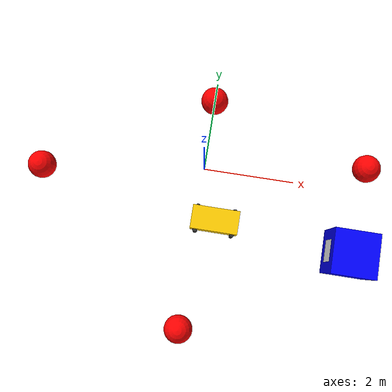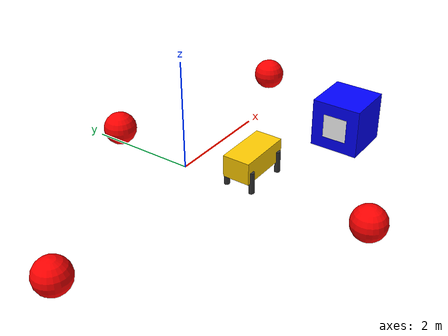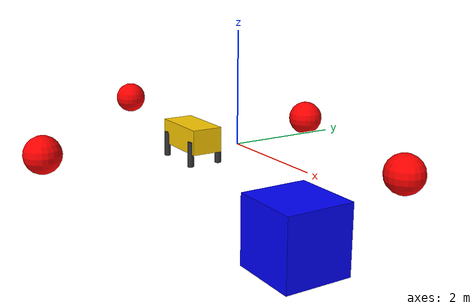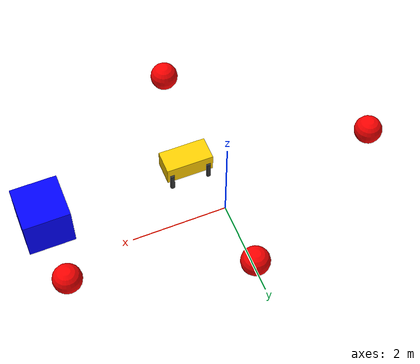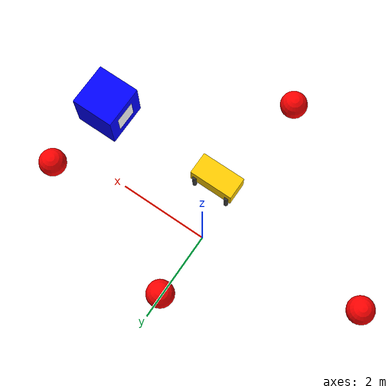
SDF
<sdf version="1.6">
 <world name="empty_room">
  <plugin filename="gz-sim-physics-system" name="gz::sim::systems::Physics"/>
  <plugin filename="gz-sim-sensors-system" name="gz::sim::systems::Sensors">
   <render_engine>ogre2</render_engine>
  </plugin>
  <plugin filename="gz-sim-scene-broadcaster-system" name="gz::sim::systems::SceneBroadcaster"/>
  <plugin filename="gz-sim-user-commands-system" name="gz::sim::systems::UserCommands"/>
  <physics name="1ms" type="ode">
   <max_step_size>0.001</max_step_size>
   <real_time_factor>1.0</real_time_factor>
  </physics>
  <scene>
   <ambient>0.5 0.5 0.5 1.0</ambient>
   <background>0.7 0.7 0.7 1.0</background>
   <grid>false</grid>
   <origin_visual>false</origin_visual>
   <shadows>false</shadows>
  </scene>
  <atmosphere type="adiabatic">
   <temperature>288</temperature>
   <temperature_gradient>0.02</temperature_gradient>
  </atmosphere>
  <model name="spot_robot">
   <pose>0.41 -1.14 0.4 0 0 0</pose>
   <link name="body">
    <inertial><mass>20</mass><inertia><ixx>0.5</ixx><iyy>0.5</iyy><izz>0.3</izz></inertia></inertial>
    <collision name="collision"><geometry><box><size>1.0 0.5 0.4</size></box></geometry></collision>
    <visual name="body_visual">
     <geometry><box><size>1.0 0.5 0.4</size></box></geometry>
     <material><ambient>1 0.8 0 1</ambient><diffuse>1 0.8 0 1</diffuse><emissive>0.3 0.2 0 1</emissive></material>
    </visual>
    <sensor name="lidar" type="gpu_lidar">
     <pose>0.4 0 0.3 0 0 0</pose>
     <topic>/scan</topic>
     <update_rate>10</update_rate>
     <lidar>
      <scan>
       <horizontal><samples>720</samples><min_angle>-3.14159</min_angle><max_angle>3.14159</max_angle></horizontal>
      </scan>
      <range><min>0.1</min><max>10</max></range>
     </lidar>
     <always_on>1</always_on>
     <visualize>true</visualize>
    </sensor>
   </link>
   <link name="fl_leg">
    <pose>0.4 0.25 -0.2 0 0 0</pose>
    <inertial><mass>1</mass></inertial>
    <collision name="collision">
     <geometry><cylinder><radius>0.05</radius><length>0.4</length></cylinder></geometry>
    </collision>
    <visual name="visual">
     <geometry><cylinder><radius>0.05</radius><length>0.4</length></cylinder></geometry>
     <material><ambient>0.2 0.2 0.2 1</ambient><diffuse>0.2 0.2 0.2 1</diffuse></material>
    </visual>
   </link>
   <joint name="fl_joint" type="revolute">
    <parent>body</parent>
    <child>fl_leg</child>
    <axis><xyz>0 1 0</xyz><limit><lower>-0.5</lower><upper>0.5</upper><effort>100</effort></limit></axis>
   </joint>
   <link name="fr_leg">
    <pose>0.4 -0.25 -0.2 0 0 0</pose>
    <inertial><mass>1</mass></inertial>
    <collision name="collision">
     <geometry><cylinder><radius>0.05</radius><length>0.4</length></cylinder></geometry>
    </collision>
    <visual name="visual">
     <geometry><cylinder><radius>0.05</radius><length>0.4</length></cylinder></geometry>
     <material><ambient>0.2 0.2 0.2 1</ambient><diffuse>0.2 0.2 0.2 1</diffuse></material>
    </visual>
   </link>
   <joint name="fr_joint" type="revolute">
    <parent>body</parent>
    <child>fr_leg</child>
    <axis><xyz>0 1 0</xyz><limit><lower>-0.5</lower><upper>0.5</upper><effort>100</effort></limit></axis>
   </joint>
   <link name="bl_leg">
    <pose>-0.4 0.25 -0.2 0 0 0</pose>
    <inertial><mass>1</mass></inertial>
    <collision name="collision">
     <geometry><cylinder><radius>0.05</radius><length>0.4</length></cylinder></geometry>
    </collision>
    <visual name="visual">
     <geometry><cylinder><radius>0.05</radius><length>0.4</length></cylinder></geometry>
     <material><ambient>0.2 0.2 0.2 1</ambient><diffuse>0.2 0.2 0.2 1</diffuse></material>
    </visual>
   </link>
   <joint name="bl_joint" type="revolute">
    <parent>body</parent>
    <child>bl_leg</child>
    <axis><xyz>0 1 0</xyz><limit><lower>-0.5</lower><upper>0.5</upper><effort>100</effort></limit></axis>
   </joint>
   <link name="br_leg">
    <pose>-0.4 -0.25 -0.2 0 0 0</pose>
    <inertial><mass>1</mass></inertial>
    <collision name="collision">
     <geometry><cylinder><radius>0.05</radius><length>0.4</length></cylinder></geometry>
    </collision>
    <visual name="visual">
     <geometry><cylinder><radius>0.05</radius><length>0.4</length></cylinder></geometry>
     <material><ambient>0.2 0.2 0.2 1</ambient><diffuse>0.2 0.2 0.2 1</diffuse></material>
    </visual>
   </link>
   <joint name="br_joint" type="revolute">
    <parent>body</parent>
    <child>br_leg</child>
    <axis><xyz>0 1 0</xyz><limit><lower>-0.5</lower><upper>0.5</upper><effort>100</effort></limit></axis>
   </joint>
   <plugin filename="gz-sim-diff-drive-system" name="gz::sim::systems::DiffDrive">
    <left_joint>bl_joint</left_joint>
    <right_joint>br_joint</right_joint>
    <wheel_separation>0.5</wheel_separation>
    <wheel_radius>0.15</wheel_radius>
    <topic>/cmd_vel</topic>
    <odom_topic>/odom</odom_topic>
   </plugin>
  </model>
  <model name="waypoint_A">
   <static>true</static>
   <pose>-3.5 -0.5 0.3 0 0 0</pose>
   <link name="link">
    <visual name="v1">
     <geometry><sphere><radius>0.3</radius></sphere></geometry>
     <material><ambient>1 0 0 1</ambient><diffuse>1 0 0 1</diffuse><emissive>1 0 0 1</emissive></material>
    </visual>
   </link>
  </model>
  <model name="waypoint_B">
   <static>true</static>
   <pose>0 -3.5 0.3 0 0 0</pose>
   <link name="link">
    <visual name="v2">
     <geometry><sphere><radius>0.3</radius></sphere></geometry>
     <material><ambient>1 0 0 1</ambient><diffuse>1 0 0 1</diffuse><emissive>1 0 0 1</emissive></material>
    </visual>
   </link>
  </model>
  <model name="waypoint_C">
   <static>true</static>
   <pose>3.5 0.5 0.3 0 0 0</pose>
   <link name="link">
    <visual name="v3">
     <geometry><sphere><radius>0.3</radius></sphere></geometry>
     <material><ambient>1 0 0 1</ambient><diffuse>1 0 0 1</diffuse><emissive>1 0 0 1</emissive></material>
    </visual>
   </link>
  </model>
  <model name="waypoint_D">
   <static>true</static>
   <pose>0 1.5 0.3 0 0 0</pose>
   <link name="link">
    <visual name="v4">
     <geometry><sphere><radius>0.3</radius></sphere></geometry>
     <material><ambient>1 0 0 1</ambient><diffuse>1 0 0 1</diffuse><emissive>1 0 0 1</emissive></material>
    </visual>
   </link>
  </model>
  <model name="apriltag_box">
   <static>false</static>
   <pose>3.5 -1.36 -0.2 0 0 0</pose>
   <link name="link">
    <collision name="collision"><geometry><box><size>1 1 1</size></box></geometry></collision>
    <visual name="visual_box">
     <geometry><box><size>1 1 1</size></box></geometry>
     <material><ambient>0 0 1 1</ambient><diffuse>0 0 1 1</diffuse><specular>0.5 0.5 0.5 1</specular></material>
    </visual>
    <visual name="visual">
     <pose>-0.501 0 0 0 -1.5707 0</pose>
     <geometry><box><size>0.5 0.5 0.001</size></box></geometry>
     <material>
      <ambient>1 1 1 1</ambient>
      <diffuse>1 1 1 1</diffuse>
      <specular>0.5 0.5 0.5 1</specular>
      <pbr>
       <metal>
        <albedo_map>materials/textures/tag41_12_00000.png</albedo_map>
        <roughness>0.5</roughness>
        <metalness>0.0</metalness>
       </metal>
      </pbr>
     </material>
    </visual>
   </link>
  </model>
 </world>
</sdf>
